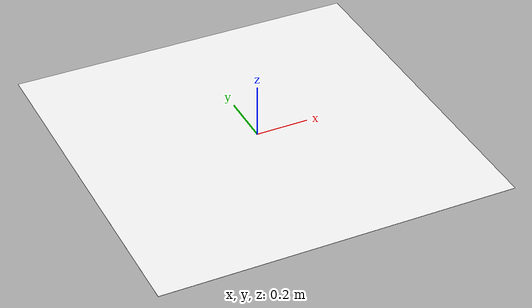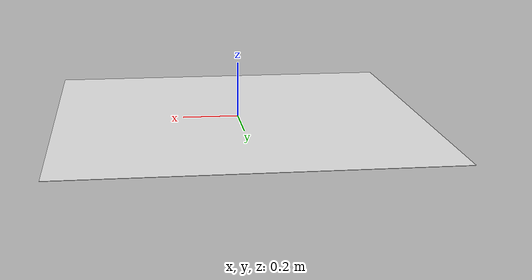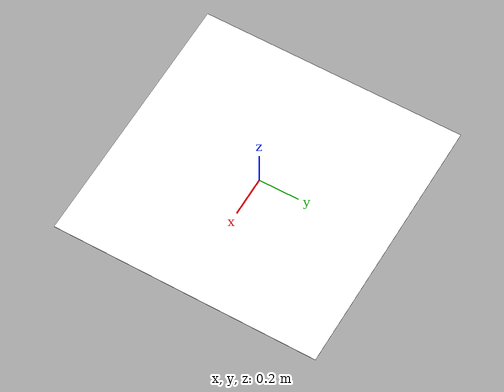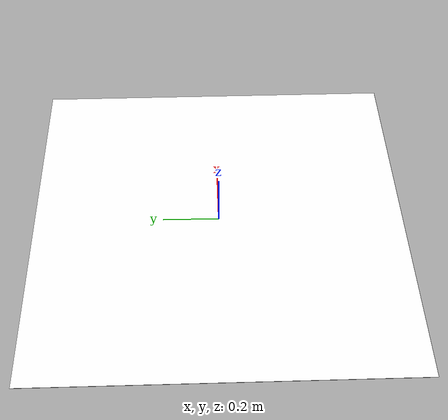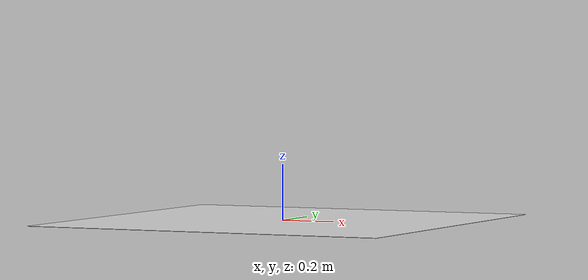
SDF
<?xml version="1.0" ?>
<!-- Generated by tools/gen_search_world.py: ArUco DICT_4X4_50 id 20, 1.0 m marker. -->
<sdf version="1.9">
  <model name="aruco_marker_20">
    <static>true</static>
    <link name="link">
      <visual name="visual">
        <cast_shadows>false</cast_shadows>
        <geometry><plane><normal>0 0 1</normal><size>1.333333 1.333333</size></plane></geometry>
        <material>
          <ambient>1 1 1 1</ambient>
          <diffuse>1 1 1 1</diffuse>
          <specular>0 0 0 1</specular>
          <pbr><metal>
            <albedo_map>model://aruco_marker_20/materials/textures/aruco_20.png</albedo_map>
            <roughness>1.0</roughness>
            <metalness>0.0</metalness>
          </metal></pbr>
        </material>
      </visual>
    </link>
  </model>
</sdf>
